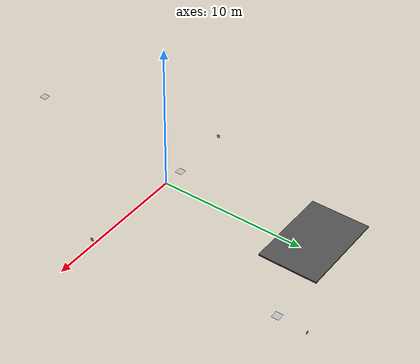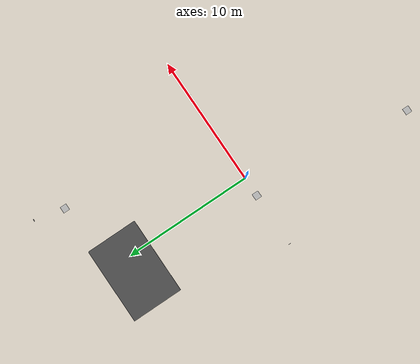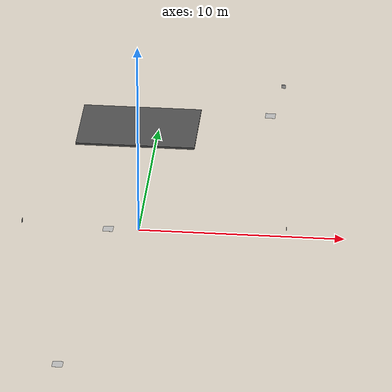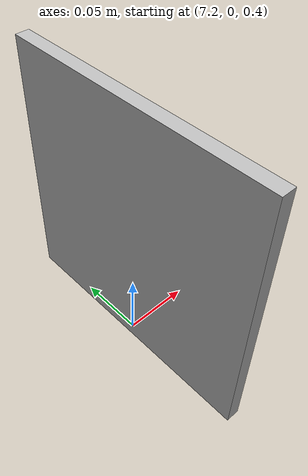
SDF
<sdf version="1.4">
 <world name="default">
  <scene><ambient>0.5 0.5 0.5 1</ambient><background>0.5 0.5 0.5 1</background><shadows>false</shadows></scene>
  <physics type="ode">
   <gravity>0 0 -9.8</gravity>
   <ode>
    <solver><type>quick</type><iters>10</iters><sor>1.3</sor></solver>
    <constraints>
     <cfm>0.0</cfm>
     <erp>0.2</erp>
     <contact_max_correcting_vel>100.0</contact_max_correcting_vel>
     <contact_surface_layer>0.001</contact_surface_layer>
    </constraints>
   </ode>
   <max_step_size>0.001</max_step_size>
  </physics>
  <model name="carpet">
   <link name="carpet_link">
    <pose>-1.05 10.35 -0.0515 0 0 0</pose>
    <collision name="carpet_collision"><geometry><box><size>6 4 0.1</size></box></geometry></collision>
    <visual name="carpet_visual">
     <geometry><box><size>6 4 0.1</size></box></geometry>
     <material>
      <script>
       <uri>model://asphalt_plane/materials/scripts</uri>
       <uri>model://asphalt_plane/materials/textures</uri>
       <name>vrc/asphalt</name>
      </script>
     </material>
     <cast_shadows>false</cast_shadows>
    </visual>
   </link>
   <static>true</static>
  </model>
  <model name="me">
   <link name="me_link">
    <pose>-1.5 0 0 0 0 0</pose>
    <visual name="me_visual">
     <geometry><box><size>0.5 0.5 0.001</size></box></geometry>
     <material>Gazebo/Orange</material>
    </visual>
   </link>
   <static>true</static>
  </model>
  <model name="balcony">
   <link name="balcony_link">
    <pose>-2.5 -12.5 0 0 0 0</pose>
    <visual name="balcony_visual">
     <geometry><box><size>0.5 0.5 0.001</size></box></geometry>
     <material>Gazebo/Orange</material>
    </visual>
   </link>
   <static>true</static>
  </model>
  <model name="dining">
   <link name="dining_link">
    <pose>5.5 12 0 0 0 0</pose>
    <visual name="dining_visual">
     <geometry><box><size>0.5 0.5 0.001</size></box></geometry>
     <material>Gazebo/Orange</material>
    </visual>
   </link>
   <static>true</static>
  </model>
  <model name="ARTag_partition_0">
   <link name="ARTag_partition_0_link">
    <pose>7.2 0 0.5 0 1.57 0</pose>
    <visual name="ARTag_partition_0_visual">
     <geometry><box><size>0.2 0.2 0.01</size></box></geometry>
     <material>
      <script>
       <uri>model://ARTags/materials/scripts</uri>
       <uri>model://ARTags/materials/textures</uri>
       <name>ARTags/product_1</name>
      </script>
     </material>
    </visual>
   </link>
   <static>true</static>
  </model>
  <model name="ARTag_partition_1">
   <link name="ARTag_partition_1_link">
    <pose>6 14.25 0.5 0 1.57 1.57</pose>
    <visual name="ARTag_partition_1_visual">
     <geometry><box><size>0.2 0.2 0.01</size></box></geometry>
     <material>
      <script>
       <uri>model://ARTags/materials/scripts</uri>
       <uri>model://ARTags/materials/textures</uri>
       <name>ARTags/product_1</name>
      </script>
     </material>
    </visual>
   </link>
   <static>true</static>
  </model>
  <model name="ARTag_storage_0">
   <link name="ARTag_storage_0_link">
    <pose>-5.7 0 0.25 0 1.57 0</pose>
    <visual name="ARTag_storage_0_visual">
     <geometry><box><size>0.2 0.2 0.01</size></box></geometry>
     <material>
      <script>
       <uri>model://ARTags/materials/scripts</uri>
       <uri>model://ARTags/materials/textures</uri>
       <name>ARTags/product_0</name>
      </script>
     </material>
    </visual>
   </link>
   <static>true</static>
  </model>
  <light type="directional" name="my_light">
   <pose>0 0 30 0 0 0</pose>
   <diffuse>.9 .9 .9 1</diffuse>
   <specular>.1 .1 .1 1</specular>
   <attenuation><range>20</range></attenuation>
   <direction>0 0 -1</direction>
   <cast_shadows>false</cast_shadows>
  </light>
 </world>
</sdf>
